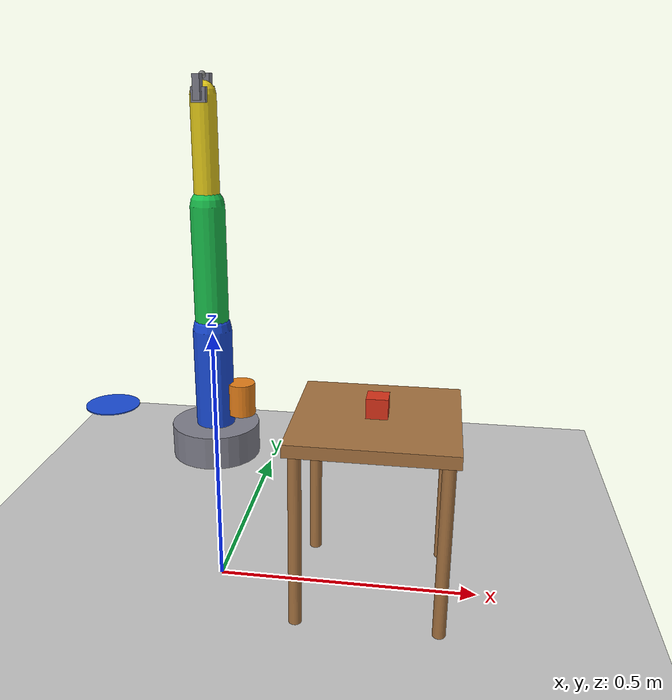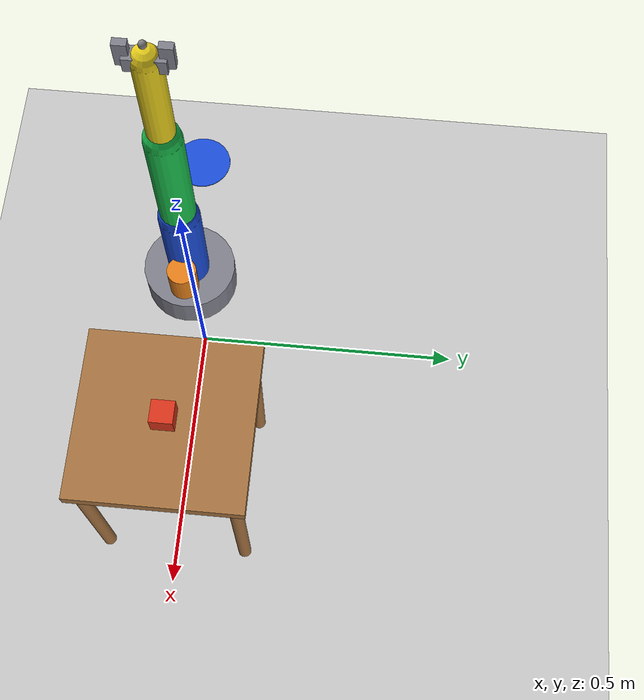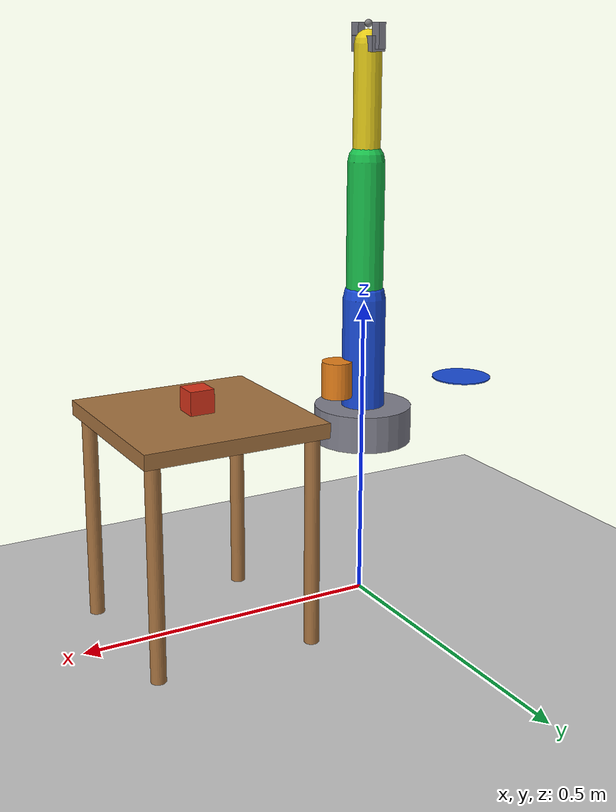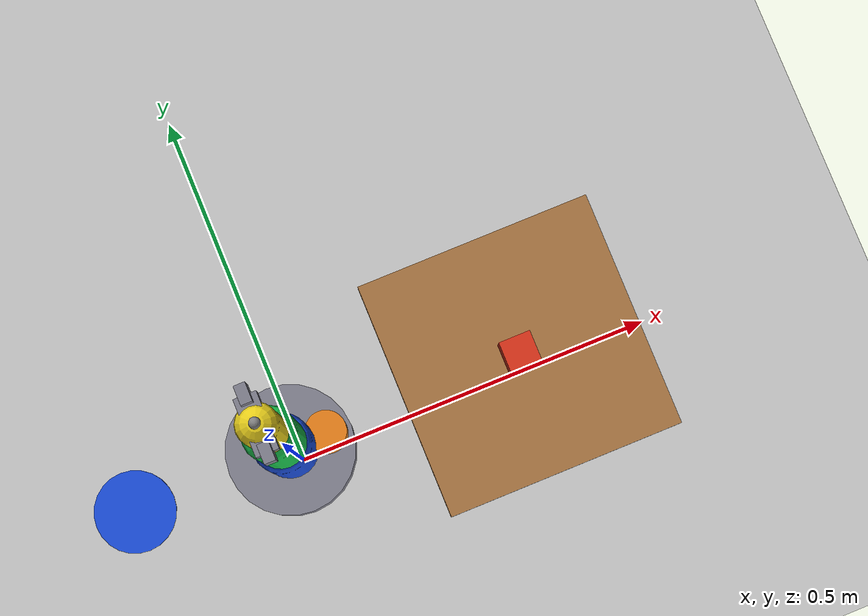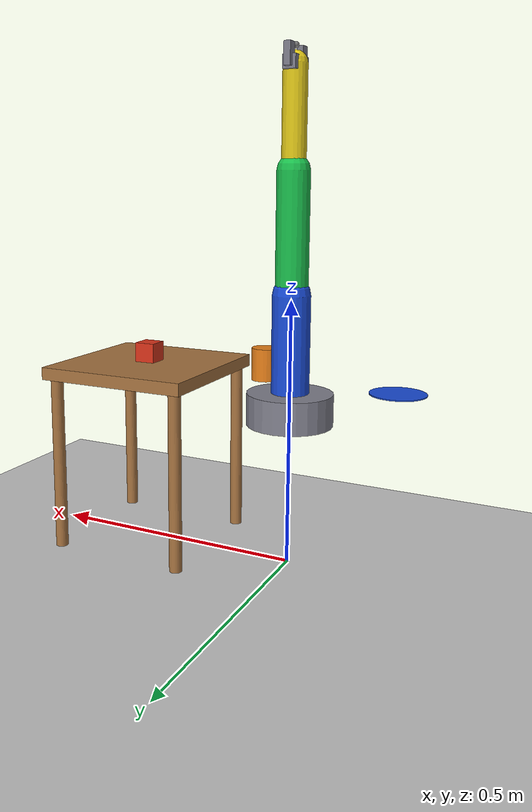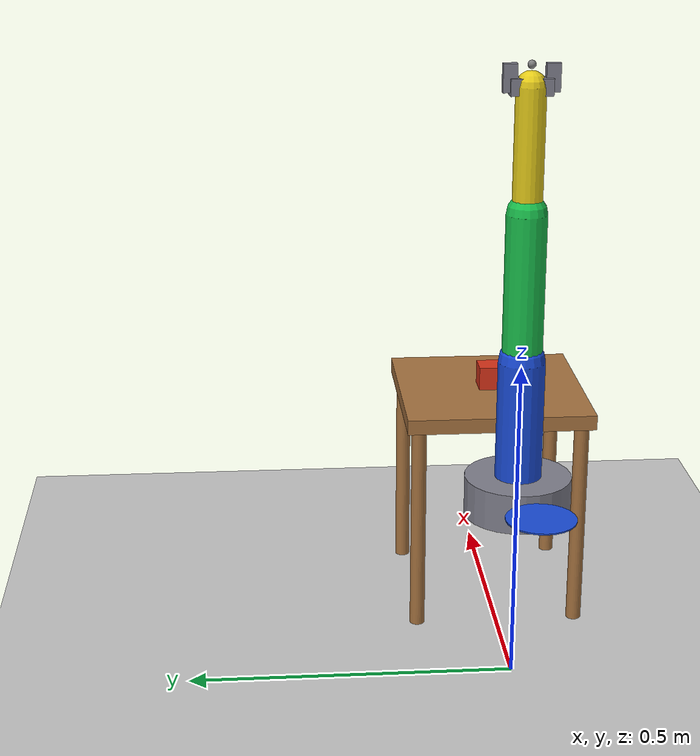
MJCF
<mujoco model="robothon_v8_ultimate">
    <option timestep="0.002" gravity="0 0 -9.81">
        <flag contact="enable"/>
    </option>

    <visual>
        <global offwidth="1920" offheight="1080"/>
        <headlight ambient="0.4 0.4 0.4" diffuse="0.6 0.6 0.6" specular="0.2 0.2 0.2"/>
    </visual>

    <asset>
        <texture name="texplane" type="2d" builtin="checker" rgb1="0.85 0.85 0.85" rgb2="0.7 0.7 0.7" width="512" height="512"/>
        <material name="matplane" texture="texplane" texrepeat="5 5" reflectance="0.1"/>
        <material name="red" rgba="0.85 0.2 0.1 1"/>
        <material name="blue" rgba="0.1 0.3 0.85 1"/>
        <material name="green" rgba="0.1 0.75 0.3 1"/>
        <material name="yellow" rgba="0.9 0.8 0.1 1"/>
        <material name="orange" rgba="0.9 0.5 0.1 1"/>
        <material name="metal" rgba="0.5 0.5 0.55 1" specular="0.6"/>
        <material name="wood" rgba="0.65 0.45 0.25 1"/>
    </asset>

    <worldbody>
        <!-- 地面 -->
        <geom name="floor" type="plane" size="2 2 0.1" material="matplane"/>

        <!-- 灯光 -->
        <light pos="0 0 3" dir="0 0 -1" diffuse="0.8 0.8 0.8"/>
        <light pos="0.5 0.5 2" dir="-0.5 -0.5 -1" diffuse="0.4 0.4 0.4"/>

        <!-- 相机 - 侧面视角，看到机器人和桌子 -->
        <camera name="main" pos="0.5 0.8 0.8" xyaxes="1 0 0 0 1 1" fovy="60"/>

        <!-- 工作台 -->
        <body name="table" pos="0.3 0 0.35">
            <geom name="table_top" type="box" size="0.15 0.15 0.012" material="wood" friction="1.0"/>
            <geom name="leg1" type="cylinder" size="0.012 0.175" pos="0.13 0.13 -0.187" material="wood"/>
            <geom name="leg2" type="cylinder" size="0.012 0.175" pos="-0.13 0.13 -0.187" material="wood"/>
            <geom name="leg3" type="cylinder" size="0.012 0.175" pos="0.13 -0.13 -0.187" material="wood"/>
            <geom name="leg4" type="cylinder" size="0.012 0.175" pos="-0.13 -0.13 -0.187" material="wood"/>
        </body>

        <!-- 红色方块（可推动） -->
        <body name="block" pos="0.3 0 0.38">
            <freejoint name="block_joint"/>
            <geom name="block_geom" type="box" size="0.02 0.02 0.02" material="red" mass="0.05" friction="0.8"/>
        </body>

        <!-- 蓝色目标区域 -->
        <body name="target_zone" pos="-0.2 0 0.35">
            <geom name="target_geom" type="cylinder" size="0.05 0.001" material="blue"/>
        </body>

        <!-- 橙色障碍物 -->
        <body name="obstacle" pos="0.05 0 0.38">
            <geom name="obstacle_geom" type="cylinder" size="0.025 0.03" material="orange" mass="0.1"/>
        </body>

        <!-- 机械臂 -->
        <body name="base" pos="0 0 0.3">
            <geom name="base_geom" type="cylinder" size="0.08 0.03" material="metal"/>

            <body name="link1" pos="0 0 0.03">
                <joint name="joint1" type="hinge" axis="0 0 1" range="-180 180" damping="0.5"/>
                <geom name="link1_geom" type="capsule" fromto="0 0 0 0 0 0.18" size="0.035" material="blue" friction="0.5"/>

                <body name="link2" pos="0 0 0.18">
                    <joint name="joint2" type="hinge" axis="0 1 0" range="-135 135" damping="0.5"/>
                    <geom name="link2_geom" type="capsule" fromto="0 0 0 0 0 0.22" size="0.03" material="green" friction="0.5"/>

                    <body name="link3" pos="0 0 0.22">
                        <joint name="joint3" type="hinge" axis="0 1 0" range="-150 150" damping="0.5"/>
                        <geom name="link3_geom" type="capsule" fromto="0 0 0 0 0 0.18" size="0.022" material="yellow" friction="0.5"/>

                        <!-- 夹爪 -->
                        <body name="gripper_base" pos="0 0 0.18">
                            <geom name="gripper_base_geom" type="box" size="0.012 0.03 0.012" material="metal"/>

                            <body name="left_finger" pos="0 0.03 0.012">
                                <joint name="finger_left" type="slide" axis="0 1 0" range="0 0.02" damping="0.3"/>
                                <geom name="left_finger_geom" type="box" size="0.006 0.01 0.02" material="metal" friction="2.0"/>
                            </body>

                            <body name="right_finger" pos="0 -0.03 0.012">
                                <joint name="finger_right" type="slide" axis="0 -1 0" range="0 0.02" damping="0.3"/>
                                <geom name="right_finger_geom" type="box" size="0.006 0.01 0.02" material="metal" friction="2.0"/>
                            </body>

                            <!-- 传感器站点 -->
                            <site name="touch_site" pos="0 0 0.03" size="0.006"/>
                            <site name="ee_site" pos="0 0 0" size="0.004"/>
                        </body>
                    </body>
                </body>
            </body>
        </body>
    </worldbody>

    <!-- 传感器 -->
    <sensor>
        <!-- 触觉传感器 -->
        <touch name="touch_sensor" site="touch_site"/>

        <!-- 末端执行器位置 -->
        <framepos name="ee_pos" objtype="body" objname="gripper_base"/>

        <!-- 方块位置 -->
        <framepos name="block_pos" objtype="body" objname="block"/>

        <!-- 关节位置传感器 -->
        <jointpos name="joint1_pos" joint="joint1"/>
        <jointpos name="joint2_pos" joint="joint2"/>
        <jointpos name="joint3_pos" joint="joint3"/>

        <!-- 关节速度传感器 -->
        <jointvel name="joint1_vel" joint="joint1"/>
        <jointvel name="joint2_vel" joint="joint2"/>
        <jointvel name="joint3_vel" joint="joint3"/>
    </sensor>

    <!-- 执行器 -->
    <actuator>
        <!-- 3个关节电机 -->
        <motor name="m1" joint="joint1" ctrlrange="-2 2"/>
        <motor name="m2" joint="joint2" ctrlrange="-2 2"/>
        <motor name="m3" joint="joint3" ctrlrange="-2 2"/>

        <!-- 夹爪位置控制 -->
        <position name="fingers" joint="finger_left" ctrlrange="0 0.02" kp="60"/>
        <position name="fingers_r" joint="finger_right" ctrlrange="0 0.02" kp="60"/>
    </actuator>
</mujoco>
